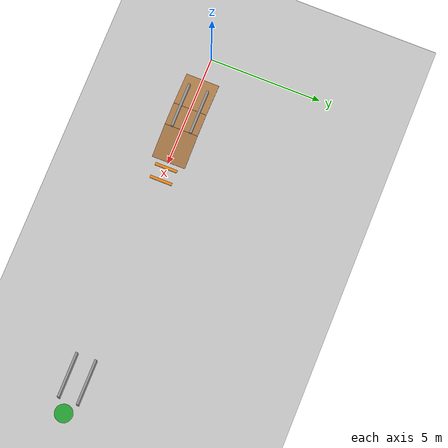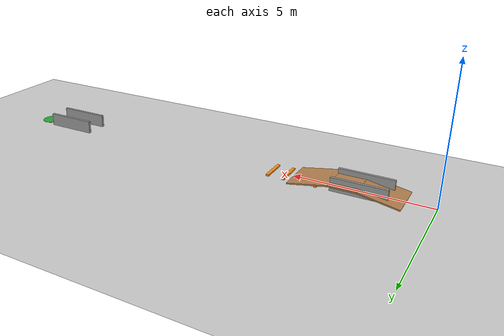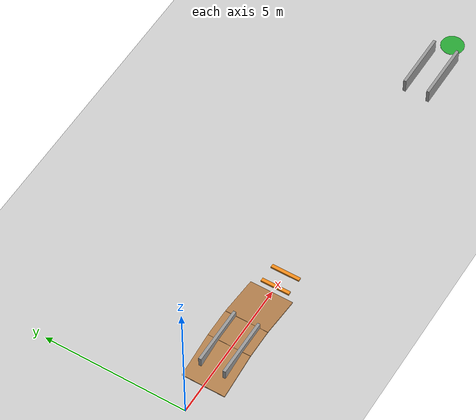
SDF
<?xml version="1.0" ?>
<!-- 由 omni_world.py 自动生成: scene=mixed seed=10 -->
<sdf version="1.5">
  <world name="mixed">
    <physics type="ode">
      <type>world</type>
      <max_step_size>0.001</max_step_size>
      <real_time_update_rate>1000</real_time_update_rate>
      <iters>500</iters>
    </physics>
    <include><uri>model://sun</uri></include>
    <include><uri>model://ground_plane</uri></include>
    <model name="mx_wl_0">
      <static>true</static>
      <pose>2.500 0.425 0.250 0.0000 0.0000 0.0000</pose>
      <link name="link">
        <collision name="collision">
          <geometry><box><size>2.000 0.100 0.500</size></box></geometry>
          <surface><friction><ode><mu>1.0</mu><mu2>1.0</mu2></ode></friction></surface>
        </collision>
        <visual name="visual">
          <geometry><box><size>2.000 0.100 0.500</size></box></geometry>
          <material><script><uri>file://media/materials/scripts/gazebo.material</uri>
            <name>Gazebo/Grey</name></script></material>
        </visual>
      </link>
    </model>
    <model name="mx_wr_0">
      <static>true</static>
      <pose>2.500 -0.425 0.250 0.0000 0.0000 0.0000</pose>
      <link name="link">
        <collision name="collision">
          <geometry><box><size>2.000 0.100 0.500</size></box></geometry>
          <surface><friction><ode><mu>1.0</mu><mu2>1.0</mu2></ode></friction></surface>
        </collision>
        <visual name="visual">
          <geometry><box><size>2.000 0.100 0.500</size></box></geometry>
          <material><script><uri>file://media/materials/scripts/gazebo.material</uri>
            <name>Gazebo/Grey</name></script></material>
        </visual>
      </link>
    </model>
    <model name="mx_bump_1_0">
      <static>true</static>
      <pose>4.000 0.000 0.033 0.0000 0.0000 0.0000</pose>
      <link name="link">
        <collision name="collision">
          <geometry><box><size>0.120 1.000 0.065</size></box></geometry>
          <surface><friction><ode><mu>1.0</mu><mu2>1.0</mu2></ode></friction></surface>
        </collision>
        <visual name="visual">
          <geometry><box><size>0.120 1.000 0.065</size></box></geometry>
          <material><script><uri>file://media/materials/scripts/gazebo.material</uri>
            <name>Gazebo/Orange</name></script></material>
        </visual>
      </link>
    </model>
    <model name="mx_bump_1_1">
      <static>true</static>
      <pose>4.600 0.000 0.033 0.0000 0.0000 0.0000</pose>
      <link name="link">
        <collision name="collision">
          <geometry><box><size>0.120 1.000 0.065</size></box></geometry>
          <surface><friction><ode><mu>1.0</mu><mu2>1.0</mu2></ode></friction></surface>
        </collision>
        <visual name="visual">
          <geometry><box><size>0.120 1.000 0.065</size></box></geometry>
          <material><script><uri>file://media/materials/scripts/gazebo.material</uri>
            <name>Gazebo/Orange</name></script></material>
        </visual>
      </link>
    </model>
    <model name="mx_bump_1_2">
      <static>true</static>
      <pose>5.200 0.000 0.033 0.0000 0.0000 0.0000</pose>
      <link name="link">
        <collision name="collision">
          <geometry><box><size>0.120 1.000 0.065</size></box></geometry>
          <surface><friction><ode><mu>1.0</mu><mu2>1.0</mu2></ode></friction></surface>
        </collision>
        <visual name="visual">
          <geometry><box><size>0.120 1.000 0.065</size></box></geometry>
          <material><script><uri>file://media/materials/scripts/gazebo.material</uri>
            <name>Gazebo/Orange</name></script></material>
        </visual>
      </link>
    </model>
    <model name="mx_bump_1_3">
      <static>true</static>
      <pose>5.800 0.000 0.033 0.0000 0.0000 0.0000</pose>
      <link name="link">
        <collision name="collision">
          <geometry><box><size>0.120 1.000 0.065</size></box></geometry>
          <surface><friction><ode><mu>1.0</mu><mu2>1.0</mu2></ode></friction></surface>
        </collision>
        <visual name="visual">
          <geometry><box><size>0.120 1.000 0.065</size></box></geometry>
          <material><script><uri>file://media/materials/scripts/gazebo.material</uri>
            <name>Gazebo/Orange</name></script></material>
        </visual>
      </link>
    </model>
    <model name="ramp_up">
      <static>true</static>
      <pose>1.739 0.000 0.155 0.0000 -0.1745 0.0000</pose>
      <link name="link">
        <collision name="collision">
          <geometry><box><size>1.500 1.500 0.050</size></box></geometry>
          <surface><friction><ode><mu>1.2</mu><mu2>1.2</mu2></ode></friction></surface>
        </collision>
        <visual name="visual">
          <geometry><box><size>1.500 1.500 0.050</size></box></geometry>
          <material><script><uri>file://media/materials/scripts/gazebo.material</uri>
            <name>Gazebo/Wood</name></script></material>
        </visual>
      </link>
    </model>
    <model name="platform">
      <static>true</static>
      <pose>2.977 0.000 0.285 0.0000 0.0000 0.0000</pose>
      <link name="link">
        <collision name="collision">
          <geometry><box><size>1.000 1.500 0.050</size></box></geometry>
          <surface><friction><ode><mu>1.2</mu><mu2>1.2</mu2></ode></friction></surface>
        </collision>
        <visual name="visual">
          <geometry><box><size>1.000 1.500 0.050</size></box></geometry>
          <material><script><uri>file://media/materials/scripts/gazebo.material</uri>
            <name>Gazebo/Wood</name></script></material>
        </visual>
      </link>
    </model>
    <model name="ramp_down">
      <static>true</static>
      <pose>4.216 0.000 0.155 0.0000 0.1745 0.0000</pose>
      <link name="link">
        <collision name="collision">
          <geometry><box><size>1.500 1.500 0.050</size></box></geometry>
          <surface><friction><ode><mu>1.2</mu><mu2>1.2</mu2></ode></friction></surface>
        </collision>
        <visual name="visual">
          <geometry><box><size>1.500 1.500 0.050</size></box></geometry>
          <material><script><uri>file://media/materials/scripts/gazebo.material</uri>
            <name>Gazebo/Wood</name></script></material>
        </visual>
      </link>
    </model>
    <model name="ramp_up">
      <static>true</static>
      <pose>1.739 0.000 0.155 0.0000 -0.1745 0.0000</pose>
      <link name="link">
        <collision name="collision">
          <geometry><box><size>1.500 1.500 0.050</size></box></geometry>
          <surface><friction><ode><mu>1.2</mu><mu2>1.2</mu2></ode></friction></surface>
        </collision>
        <visual name="visual">
          <geometry><box><size>1.500 1.500 0.050</size></box></geometry>
          <material><script><uri>file://media/materials/scripts/gazebo.material</uri>
            <name>Gazebo/Wood</name></script></material>
        </visual>
      </link>
    </model>
    <model name="platform">
      <static>true</static>
      <pose>2.977 0.000 0.285 0.0000 0.0000 0.0000</pose>
      <link name="link">
        <collision name="collision">
          <geometry><box><size>1.000 1.500 0.050</size></box></geometry>
          <surface><friction><ode><mu>1.2</mu><mu2>1.2</mu2></ode></friction></surface>
        </collision>
        <visual name="visual">
          <geometry><box><size>1.000 1.500 0.050</size></box></geometry>
          <material><script><uri>file://media/materials/scripts/gazebo.material</uri>
            <name>Gazebo/Wood</name></script></material>
        </visual>
      </link>
    </model>
    <model name="ramp_down">
      <static>true</static>
      <pose>4.216 0.000 0.155 0.0000 0.1745 0.0000</pose>
      <link name="link">
        <collision name="collision">
          <geometry><box><size>1.500 1.500 0.050</size></box></geometry>
          <surface><friction><ode><mu>1.2</mu><mu2>1.2</mu2></ode></friction></surface>
        </collision>
        <visual name="visual">
          <geometry><box><size>1.500 1.500 0.050</size></box></geometry>
          <material><script><uri>file://media/materials/scripts/gazebo.material</uri>
            <name>Gazebo/Wood</name></script></material>
        </visual>
      </link>
    </model>
    <model name="mx_wl_4">
      <static>true</static>
      <pose>15.000 0.425 0.250 0.0000 0.0000 0.0000</pose>
      <link name="link">
        <collision name="collision">
          <geometry><box><size>2.000 0.100 0.500</size></box></geometry>
          <surface><friction><ode><mu>1.0</mu><mu2>1.0</mu2></ode></friction></surface>
        </collision>
        <visual name="visual">
          <geometry><box><size>2.000 0.100 0.500</size></box></geometry>
          <material><script><uri>file://media/materials/scripts/gazebo.material</uri>
            <name>Gazebo/Grey</name></script></material>
        </visual>
      </link>
    </model>
    <model name="mx_wr_4">
      <static>true</static>
      <pose>15.000 -0.425 0.250 0.0000 0.0000 0.0000</pose>
      <link name="link">
        <collision name="collision">
          <geometry><box><size>2.000 0.100 0.500</size></box></geometry>
          <surface><friction><ode><mu>1.0</mu><mu2>1.0</mu2></ode></friction></surface>
        </collision>
        <visual name="visual">
          <geometry><box><size>2.000 0.100 0.500</size></box></geometry>
          <material><script><uri>file://media/materials/scripts/gazebo.material</uri>
            <name>Gazebo/Grey</name></script></material>
        </visual>
      </link>
    </model>
    <model name="goal">
      <static>true</static>
      <pose>16.500 0.000 0.005 0 0 0</pose>
      <link name="link">
        <visual name="visual">
          <geometry><cylinder><radius>0.400</radius><length>0.01</length></cylinder></geometry>
          <material><script><uri>file://media/materials/scripts/gazebo.material</uri>
            <name>Gazebo/Green</name></script></material>
        </visual>
      </link>
    </model>

  </world>
</sdf>
